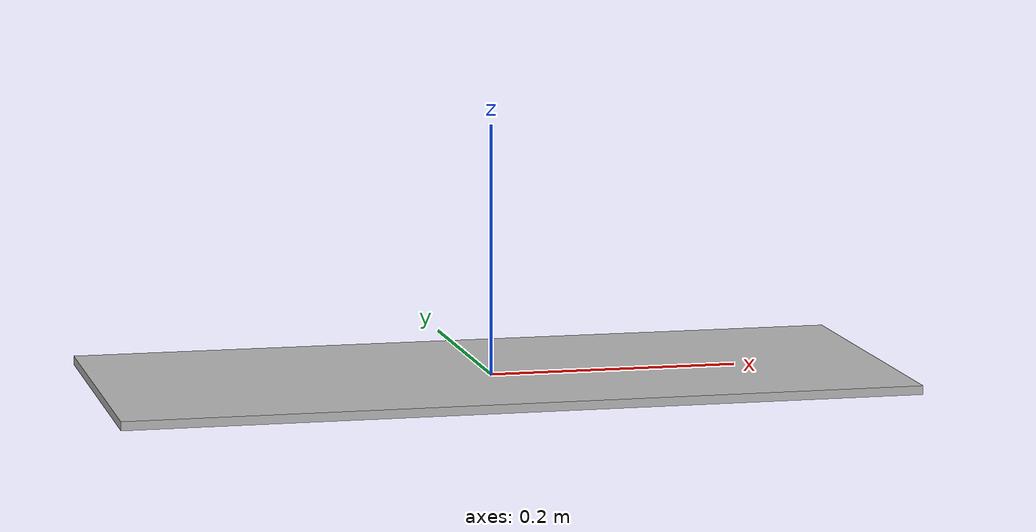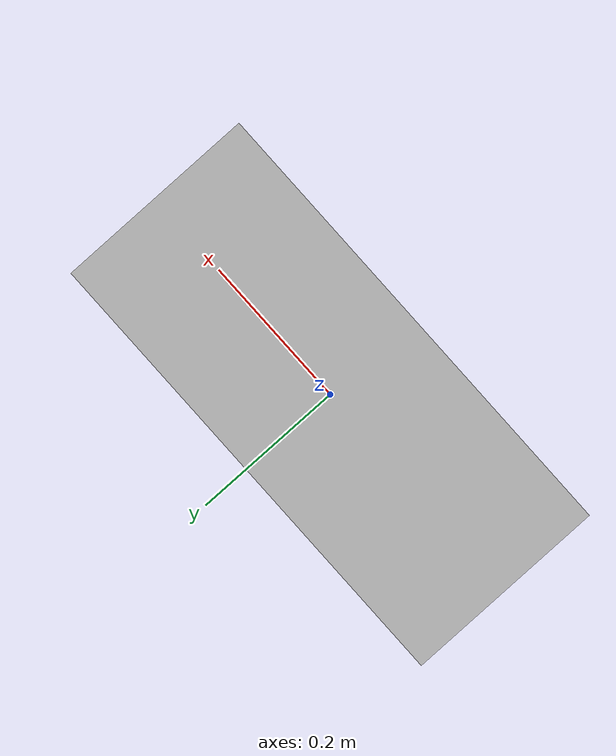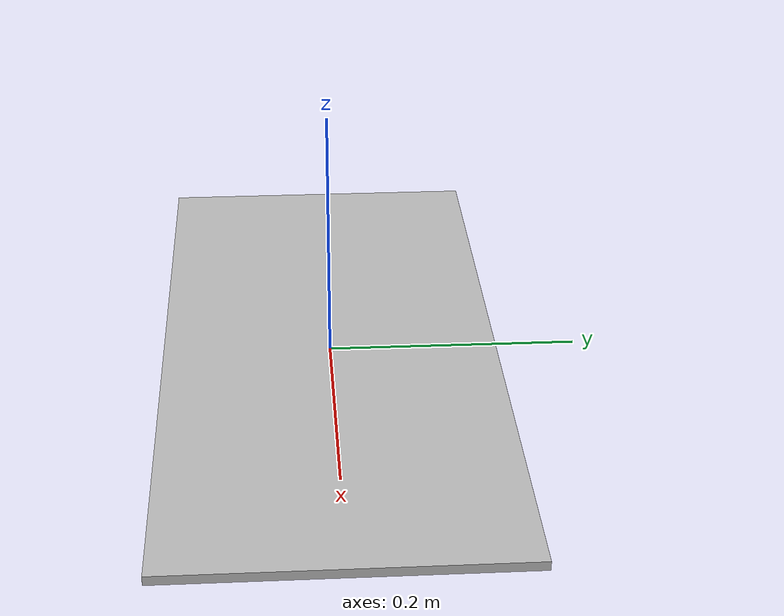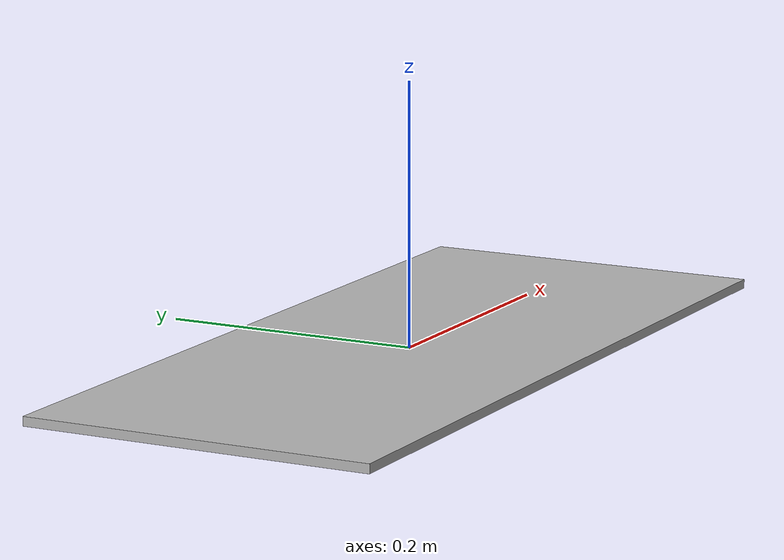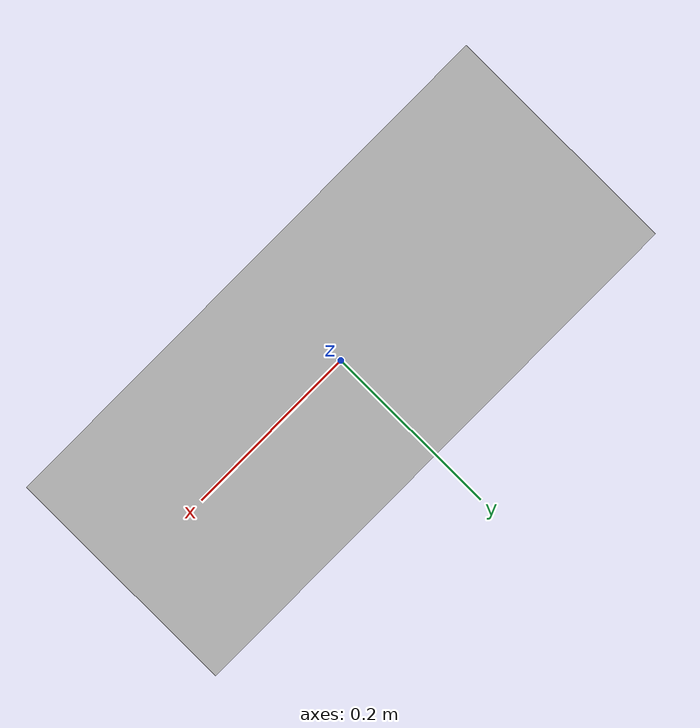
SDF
<?xml version="1.0" ?>
<sdf version="1.4">
  <model name="fire_extinguisher_drawing">
    <static>true</static>
    <link name="link">
      <pose>0 0 0 0 0 0</pose>
      <visual name="visual">
        <cast_shadows>false</cast_shadows>
        <geometry>
          <box>
            <size>0.63 0.27 0.007</size>
          </box>
        </geometry>
        <material>
          <script>
            <uri>model://fire_extinguisher_drawing/materials/scripts</uri>
            <uri>model://fire_extinguisher_drawing/materials/textures</uri>
            <name>fire_extinguisher_drawing</name>
          </script>
        </material>
      </visual>
    </link>
  </model>
</sdf>
